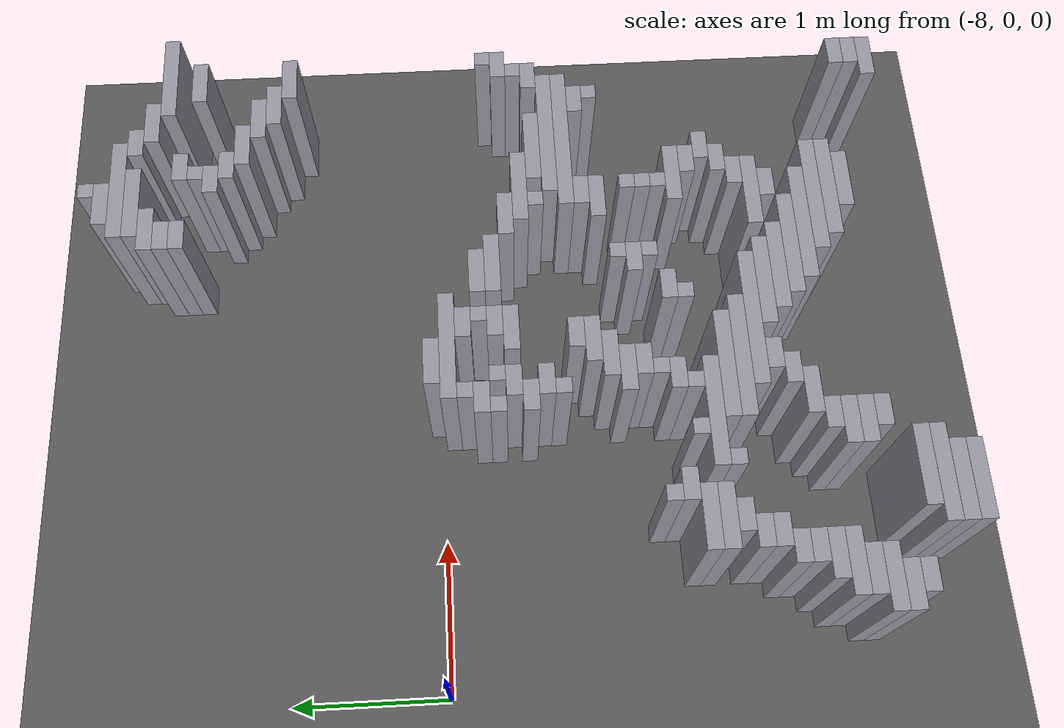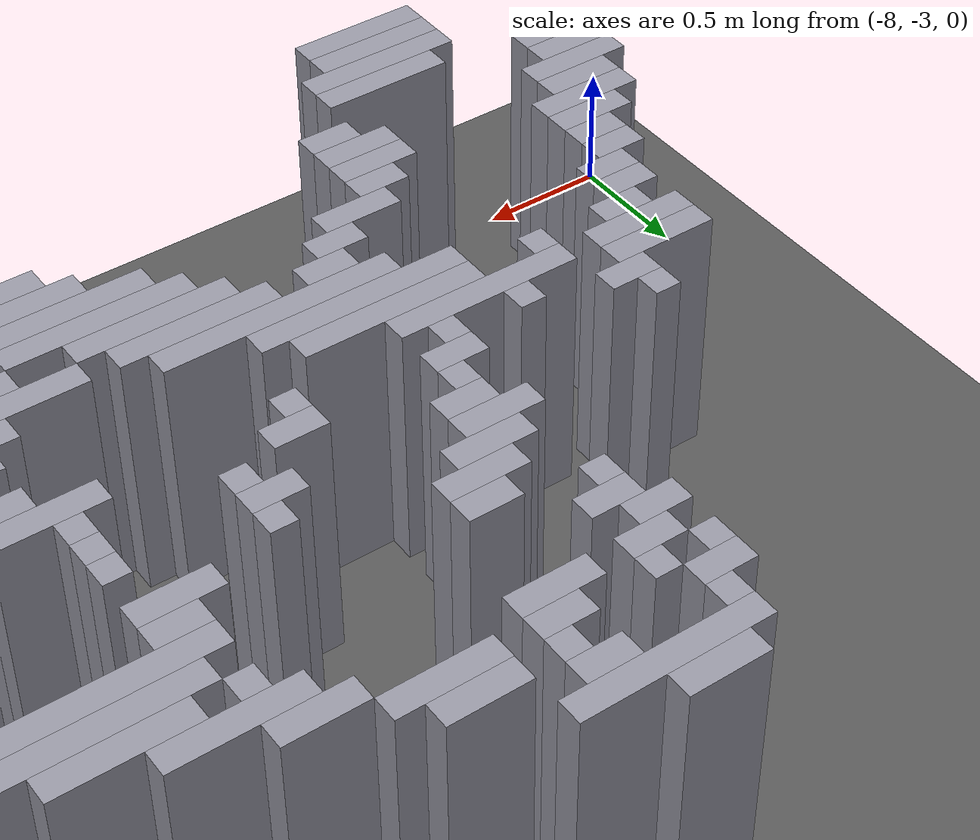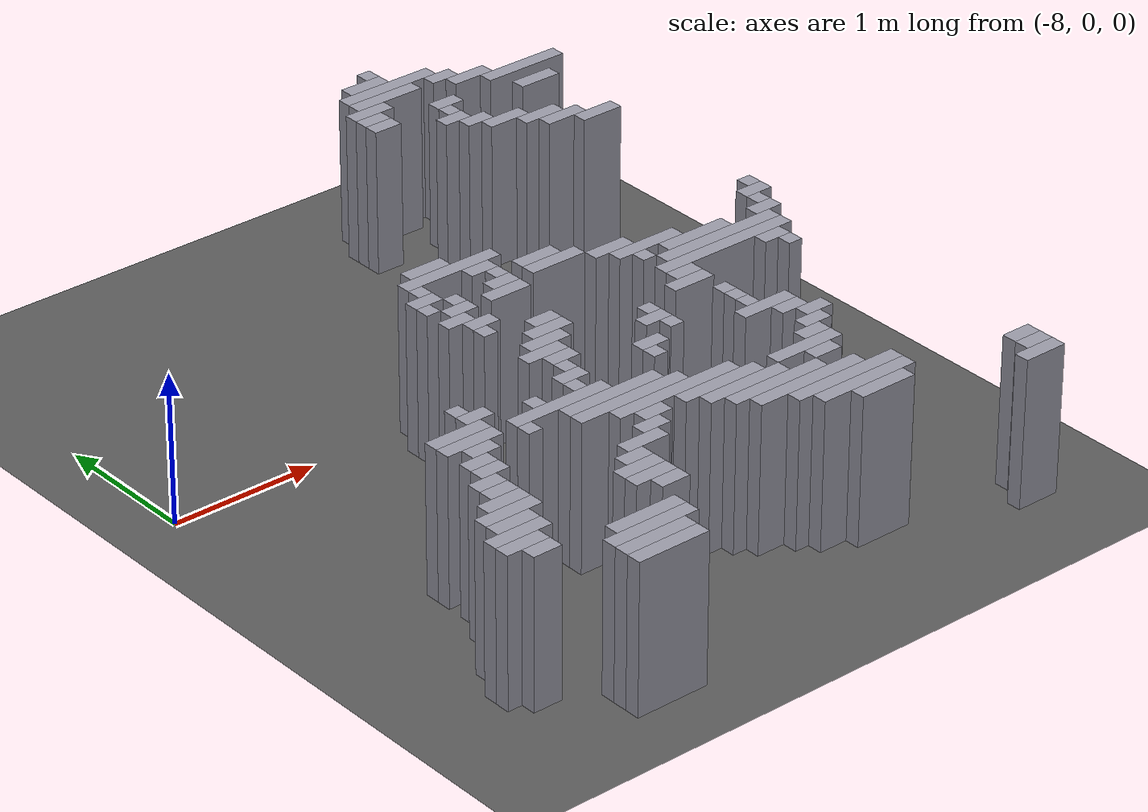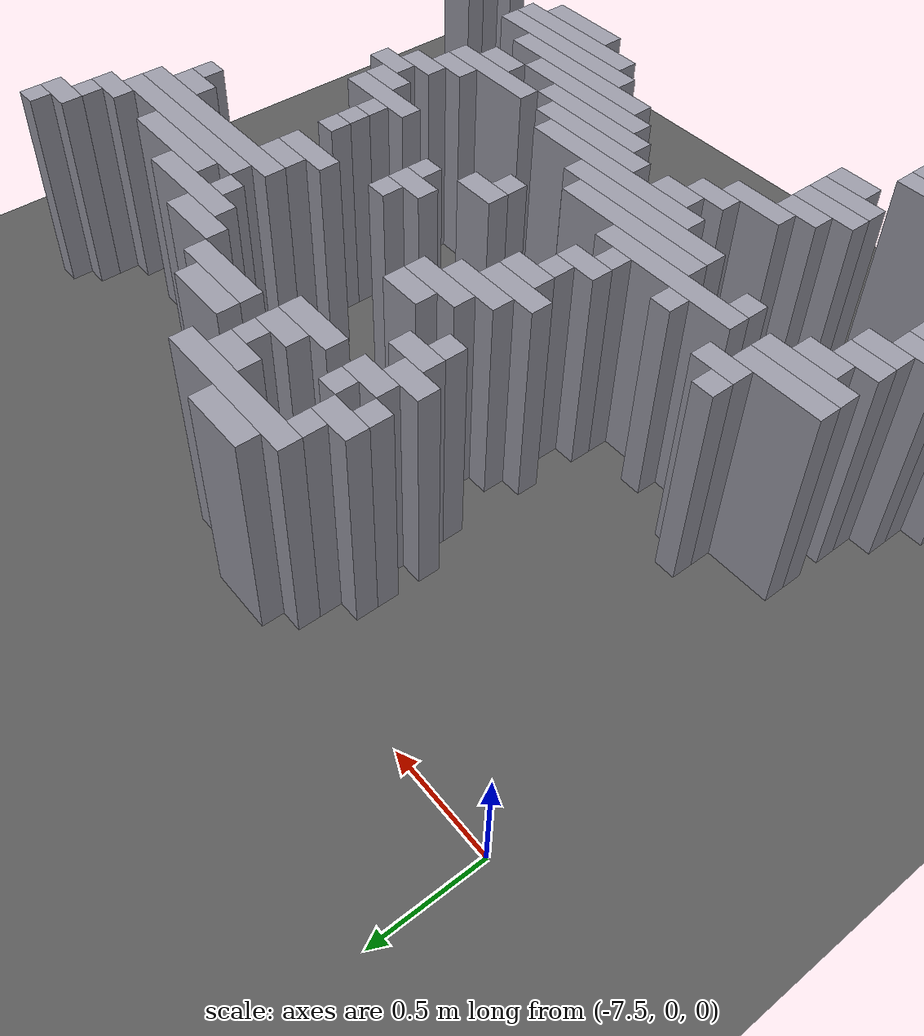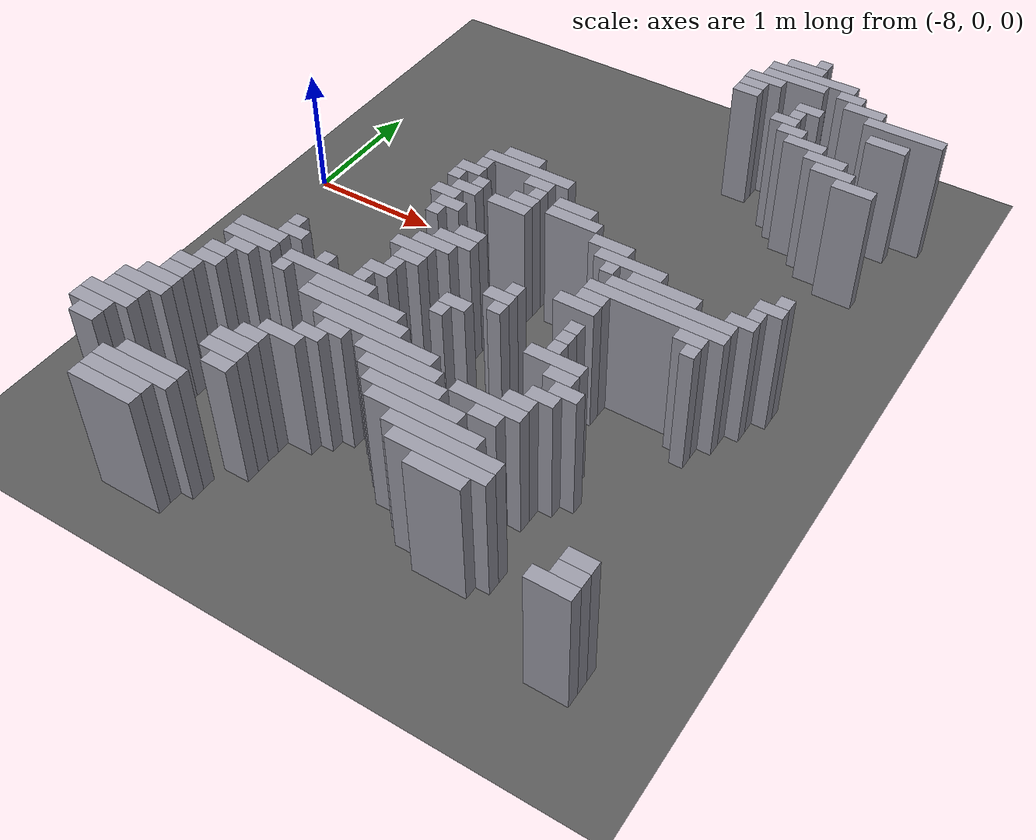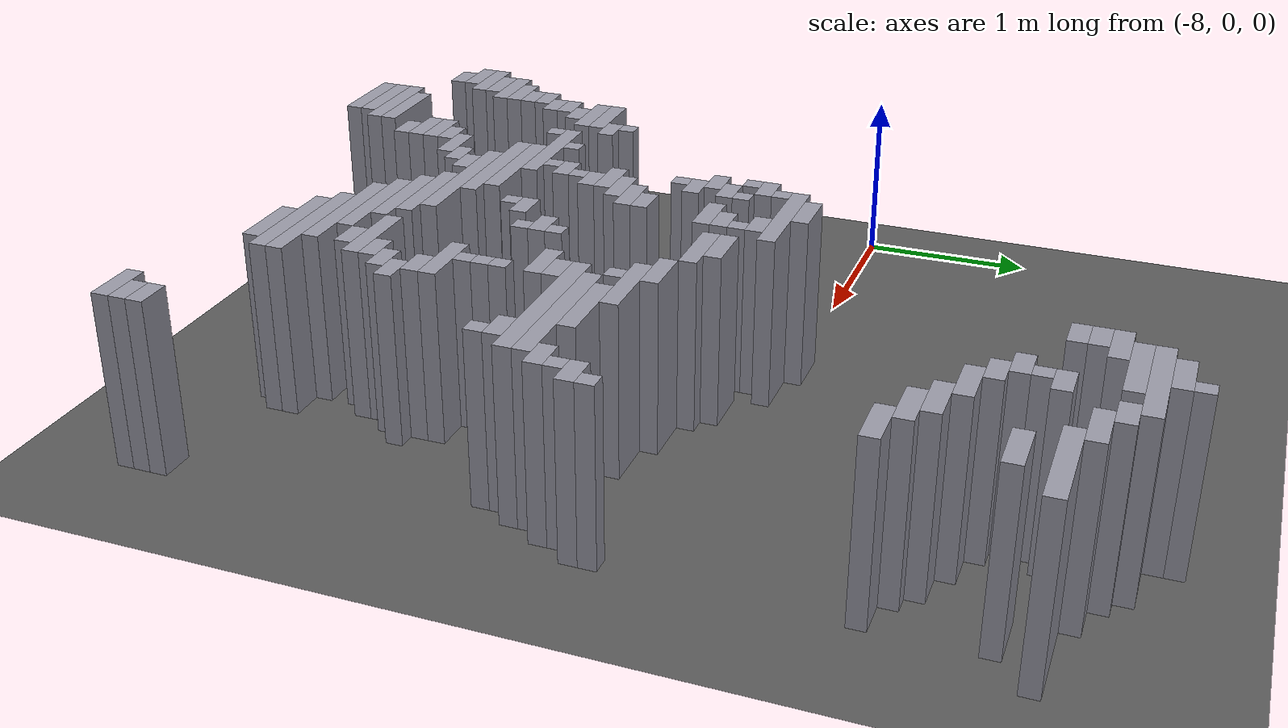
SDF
<sdf version="1.8">
 <world name="dimi">
  <model name="ground">
   <static>true</static>
   <link name="ground_link">
    <collision name="c"><geometry><plane><normal>0 0 1</normal><size>60 60</size></plane></geometry></collision>
    <visual name="v">
     <geometry><plane><normal>0 0 1</normal><size>60 60</size></plane></geometry>
     <material><ambient>0.3 0.3 0.3 1</ambient><diffuse>0.35 0.35 0.35 1</diffuse></material>
    </visual>
   </link>
  </model>
  <model name="walls">
   <static>true</static>
   <link name="wall_1">
    <pose>-4.8110 2.2290 0.5000 0 0 0</pose>
    <collision name="c"><geometry><box><size>0.1000 0.1000 1.0000</size></box></geometry></collision>
    <visual name="v">
     <geometry><box><size>0.1000 0.1000 1.0000</size></box></geometry>
     <material><ambient>0.5 0.5 0.55 1</ambient><diffuse>0.6 0.6 0.65 1</diffuse></material>
    </visual>
   </link>
   <link name="wall_3">
    <pose>-4.9110 2.1290 0.5000 0 0 0</pose>
    <collision name="c"><geometry><box><size>0.3000 0.1000 1.0000</size></box></geometry></collision>
    <visual name="v">
     <geometry><box><size>0.3000 0.1000 1.0000</size></box></geometry>
     <material><ambient>0.5 0.5 0.55 1</ambient><diffuse>0.6 0.6 0.65 1</diffuse></material>
    </visual>
   </link>
   <link name="wall_4">
    <pose>-4.8110 2.0290 0.5000 0 0 0</pose>
    <collision name="c"><geometry><box><size>0.7000 0.1000 1.0000</size></box></geometry></collision>
    <visual name="v">
     <geometry><box><size>0.7000 0.1000 1.0000</size></box></geometry>
     <material><ambient>0.5 0.5 0.55 1</ambient><diffuse>0.6 0.6 0.65 1</diffuse></material>
    </visual>
   </link>
   <link name="wall_5">
    <pose>-4.9110 1.9290 0.5000 0 0 0</pose>
    <collision name="c"><geometry><box><size>0.5000 0.1000 1.0000</size></box></geometry></collision>
    <visual name="v">
     <geometry><box><size>0.5000 0.1000 1.0000</size></box></geometry>
     <material><ambient>0.5 0.5 0.55 1</ambient><diffuse>0.6 0.6 0.65 1</diffuse></material>
    </visual>
   </link>
   <link name="wall_6">
    <pose>-4.4610 1.9290 0.5000 0 0 0</pose>
    <collision name="c"><geometry><box><size>0.2000 0.1000 1.0000</size></box></geometry></collision>
    <visual name="v">
     <geometry><box><size>0.2000 0.1000 1.0000</size></box></geometry>
     <material><ambient>0.5 0.5 0.55 1</ambient><diffuse>0.6 0.6 0.65 1</diffuse></material>
    </visual>
   </link>
   <link name="wall_7">
    <pose>-5.1110 1.8290 0.5000 0 0 0</pose>
    <collision name="c"><geometry><box><size>0.3000 0.1000 1.0000</size></box></geometry></collision>
    <visual name="v">
     <geometry><box><size>0.3000 0.1000 1.0000</size></box></geometry>
     <material><ambient>0.5 0.5 0.55 1</ambient><diffuse>0.6 0.6 0.65 1</diffuse></material>
    </visual>
   </link>
   <link name="wall_8">
    <pose>-4.3110 1.8290 0.5000 0 0 0</pose>
    <collision name="c"><geometry><box><size>0.3000 0.1000 1.0000</size></box></geometry></collision>
    <visual name="v">
     <geometry><box><size>0.3000 0.1000 1.0000</size></box></geometry>
     <material><ambient>0.5 0.5 0.55 1</ambient><diffuse>0.6 0.6 0.65 1</diffuse></material>
    </visual>
   </link>
   <link name="wall_11">
    <pose>-5.1610 1.7290 0.5000 0 0 0</pose>
    <collision name="c"><geometry><box><size>0.2000 0.1000 1.0000</size></box></geometry></collision>
    <visual name="v">
     <geometry><box><size>0.2000 0.1000 1.0000</size></box></geometry>
     <material><ambient>0.5 0.5 0.55 1</ambient><diffuse>0.6 0.6 0.65 1</diffuse></material>
    </visual>
   </link>
   <link name="wall_12">
    <pose>-3.9610 1.7290 0.5000 0 0 0</pose>
    <collision name="c"><geometry><box><size>0.6000 0.1000 1.0000</size></box></geometry></collision>
    <visual name="v">
     <geometry><box><size>0.6000 0.1000 1.0000</size></box></geometry>
     <material><ambient>0.5 0.5 0.55 1</ambient><diffuse>0.6 0.6 0.65 1</diffuse></material>
    </visual>
   </link>
   <link name="wall_14">
    <pose>-5.1610 1.6290 0.5000 0 0 0</pose>
    <collision name="c"><geometry><box><size>0.2000 0.1000 1.0000</size></box></geometry></collision>
    <visual name="v">
     <geometry><box><size>0.2000 0.1000 1.0000</size></box></geometry>
     <material><ambient>0.5 0.5 0.55 1</ambient><diffuse>0.6 0.6 0.65 1</diffuse></material>
    </visual>
   </link>
   <link name="wall_15">
    <pose>-4.6610 1.6290 0.5000 0 0 0</pose>
    <collision name="c"><geometry><box><size>0.2000 0.1000 1.0000</size></box></geometry></collision>
    <visual name="v">
     <geometry><box><size>0.2000 0.1000 1.0000</size></box></geometry>
     <material><ambient>0.5 0.5 0.55 1</ambient><diffuse>0.6 0.6 0.65 1</diffuse></material>
    </visual>
   </link>
   <link name="wall_18">
    <pose>-4.7110 1.5290 0.5000 0 0 0</pose>
    <collision name="c"><geometry><box><size>0.1000 0.1000 1.0000</size></box></geometry></collision>
    <visual name="v">
     <geometry><box><size>0.1000 0.1000 1.0000</size></box></geometry>
     <material><ambient>0.5 0.5 0.55 1</ambient><diffuse>0.6 0.6 0.65 1</diffuse></material>
    </visual>
   </link>
   <link name="wall_19">
    <pose>-4.0110 1.5290 0.5000 0 0 0</pose>
    <collision name="c"><geometry><box><size>0.3000 0.1000 1.0000</size></box></geometry></collision>
    <visual name="v">
     <geometry><box><size>0.3000 0.1000 1.0000</size></box></geometry>
     <material><ambient>0.5 0.5 0.55 1</ambient><diffuse>0.6 0.6 0.65 1</diffuse></material>
    </visual>
   </link>
   <link name="wall_23">
    <pose>-4.7610 1.4290 0.5000 0 0 0</pose>
    <collision name="c"><geometry><box><size>0.2000 0.1000 1.0000</size></box></geometry></collision>
    <visual name="v">
     <geometry><box><size>0.2000 0.1000 1.0000</size></box></geometry>
     <material><ambient>0.5 0.5 0.55 1</ambient><diffuse>0.6 0.6 0.65 1</diffuse></material>
    </visual>
   </link>
   <link name="wall_30">
    <pose>-4.6610 1.3290 0.5000 0 0 0</pose>
    <collision name="c"><geometry><box><size>0.2000 0.1000 1.0000</size></box></geometry></collision>
    <visual name="v">
     <geometry><box><size>0.2000 0.1000 1.0000</size></box></geometry>
     <material><ambient>0.5 0.5 0.55 1</ambient><diffuse>0.6 0.6 0.65 1</diffuse></material>
    </visual>
   </link>
   <link name="wall_35">
    <pose>-4.5110 1.2290 0.5000 0 0 0</pose>
    <collision name="c"><geometry><box><size>0.3000 0.1000 1.0000</size></box></geometry></collision>
    <visual name="v">
     <geometry><box><size>0.3000 0.1000 1.0000</size></box></geometry>
     <material><ambient>0.5 0.5 0.55 1</ambient><diffuse>0.6 0.6 0.65 1</diffuse></material>
    </visual>
   </link>
   <link name="wall_40">
    <pose>-4.3110 1.1290 0.5000 0 0 0</pose>
    <collision name="c"><geometry><box><size>0.3000 0.1000 1.0000</size></box></geometry></collision>
    <visual name="v">
     <geometry><box><size>0.3000 0.1000 1.0000</size></box></geometry>
     <material><ambient>0.5 0.5 0.55 1</ambient><diffuse>0.6 0.6 0.65 1</diffuse></material>
    </visual>
   </link>
   <link name="wall_44">
    <pose>-4.2110 1.0290 0.5000 0 0 0</pose>
    <collision name="c"><geometry><box><size>0.3000 0.1000 1.0000</size></box></geometry></collision>
    <visual name="v">
     <geometry><box><size>0.3000 0.1000 1.0000</size></box></geometry>
     <material><ambient>0.5 0.5 0.55 1</ambient><diffuse>0.6 0.6 0.65 1</diffuse></material>
    </visual>
   </link>
   <link name="wall_49">
    <pose>-4.0110 0.9290 0.5000 0 0 0</pose>
    <collision name="c"><geometry><box><size>0.3000 0.1000 1.0000</size></box></geometry></collision>
    <visual name="v">
     <geometry><box><size>0.3000 0.1000 1.0000</size></box></geometry>
     <material><ambient>0.5 0.5 0.55 1</ambient><diffuse>0.6 0.6 0.65 1</diffuse></material>
    </visual>
   </link>
   <link name="wall_94">
    <pose>-6.1110 0.0290 0.5000 0 0 0</pose>
    <collision name="c"><geometry><box><size>0.3000 0.1000 1.0000</size></box></geometry></collision>
    <visual name="v">
     <geometry><box><size>0.3000 0.1000 1.0000</size></box></geometry>
     <material><ambient>0.5 0.5 0.55 1</ambient><diffuse>0.6 0.6 0.65 1</diffuse></material>
    </visual>
   </link>
   <link name="wall_100">
    <pose>-6.0110 -0.0710 0.5000 0 0 0</pose>
    <collision name="c"><geometry><box><size>0.7000 0.1000 1.0000</size></box></geometry></collision>
    <visual name="v">
     <geometry><box><size>0.7000 0.1000 1.0000</size></box></geometry>
     <material><ambient>0.5 0.5 0.55 1</ambient><diffuse>0.6 0.6 0.65 1</diffuse></material>
    </visual>
   </link>
   <link name="wall_108">
    <pose>-6.3110 -0.1710 0.5000 0 0 0</pose>
    <collision name="c"><geometry><box><size>0.1000 0.1000 1.0000</size></box></geometry></collision>
    <visual name="v">
     <geometry><box><size>0.1000 0.1000 1.0000</size></box></geometry>
     <material><ambient>0.5 0.5 0.55 1</ambient><diffuse>0.6 0.6 0.65 1</diffuse></material>
    </visual>
   </link>
   <link name="wall_109">
    <pose>-5.8610 -0.1710 0.5000 0 0 0</pose>
    <collision name="c"><geometry><box><size>0.2000 0.1000 1.0000</size></box></geometry></collision>
    <visual name="v">
     <geometry><box><size>0.2000 0.1000 1.0000</size></box></geometry>
     <material><ambient>0.5 0.5 0.55 1</ambient><diffuse>0.6 0.6 0.65 1</diffuse></material>
    </visual>
   </link>
   <link name="wall_118">
    <pose>-6.3610 -0.2710 0.5000 0 0 0</pose>
    <collision name="c"><geometry><box><size>0.2000 0.1000 1.0000</size></box></geometry></collision>
    <visual name="v">
     <geometry><box><size>0.2000 0.1000 1.0000</size></box></geometry>
     <material><ambient>0.5 0.5 0.55 1</ambient><diffuse>0.6 0.6 0.65 1</diffuse></material>
    </visual>
   </link>
   <link name="wall_119">
    <pose>-5.8110 -0.2710 0.5000 0 0 0</pose>
    <collision name="c"><geometry><box><size>0.1000 0.1000 1.0000</size></box></geometry></collision>
    <visual name="v">
     <geometry><box><size>0.1000 0.1000 1.0000</size></box></geometry>
     <material><ambient>0.5 0.5 0.55 1</ambient><diffuse>0.6 0.6 0.65 1</diffuse></material>
    </visual>
   </link>
   <link name="wall_120">
    <pose>-5.5110 -0.2710 0.5000 0 0 0</pose>
    <collision name="c"><geometry><box><size>0.3000 0.1000 1.0000</size></box></geometry></collision>
    <visual name="v">
     <geometry><box><size>0.3000 0.1000 1.0000</size></box></geometry>
     <material><ambient>0.5 0.5 0.55 1</ambient><diffuse>0.6 0.6 0.65 1</diffuse></material>
    </visual>
   </link>
   <link name="wall_127">
    <pose>-6.4110 -0.3710 0.5000 0 0 0</pose>
    <collision name="c"><geometry><box><size>0.1000 0.1000 1.0000</size></box></geometry></collision>
    <visual name="v">
     <geometry><box><size>0.1000 0.1000 1.0000</size></box></geometry>
     <material><ambient>0.5 0.5 0.55 1</ambient><diffuse>0.6 0.6 0.65 1</diffuse></material>
    </visual>
   </link>
   <link name="wall_128">
    <pose>-6.2110 -0.3710 0.5000 0 0 0</pose>
    <collision name="c"><geometry><box><size>0.1000 0.1000 1.0000</size></box></geometry></collision>
    <visual name="v">
     <geometry><box><size>0.1000 0.1000 1.0000</size></box></geometry>
     <material><ambient>0.5 0.5 0.55 1</ambient><diffuse>0.6 0.6 0.65 1</diffuse></material>
    </visual>
   </link>
   <link name="wall_129">
    <pose>-5.8610 -0.3710 0.5000 0 0 0</pose>
    <collision name="c"><geometry><box><size>0.2000 0.1000 1.0000</size></box></geometry></collision>
    <visual name="v">
     <geometry><box><size>0.2000 0.1000 1.0000</size></box></geometry>
     <material><ambient>0.5 0.5 0.55 1</ambient><diffuse>0.6 0.6 0.65 1</diffuse></material>
    </visual>
   </link>
   <link name="wall_130">
    <pose>-5.4610 -0.3710 0.5000 0 0 0</pose>
    <collision name="c"><geometry><box><size>0.4000 0.1000 1.0000</size></box></geometry></collision>
    <visual name="v">
     <geometry><box><size>0.4000 0.1000 1.0000</size></box></geometry>
     <material><ambient>0.5 0.5 0.55 1</ambient><diffuse>0.6 0.6 0.65 1</diffuse></material>
    </visual>
   </link>
   <link name="wall_131">
    <pose>-3.9110 -0.3710 0.5000 0 0 0</pose>
    <collision name="c"><geometry><box><size>0.1000 0.1000 1.0000</size></box></geometry></collision>
    <visual name="v">
     <geometry><box><size>0.1000 0.1000 1.0000</size></box></geometry>
     <material><ambient>0.5 0.5 0.55 1</ambient><diffuse>0.6 0.6 0.65 1</diffuse></material>
    </visual>
   </link>
   <link name="wall_140">
    <pose>-6.2610 -0.4710 0.5000 0 0 0</pose>
    <collision name="c"><geometry><box><size>0.2000 0.1000 1.0000</size></box></geometry></collision>
    <visual name="v">
     <geometry><box><size>0.2000 0.1000 1.0000</size></box></geometry>
     <material><ambient>0.5 0.5 0.55 1</ambient><diffuse>0.6 0.6 0.65 1</diffuse></material>
    </visual>
   </link>
   <link name="wall_141">
    <pose>-5.9110 -0.4710 0.5000 0 0 0</pose>
    <collision name="c"><geometry><box><size>0.3000 0.1000 1.0000</size></box></geometry></collision>
    <visual name="v">
     <geometry><box><size>0.3000 0.1000 1.0000</size></box></geometry>
     <material><ambient>0.5 0.5 0.55 1</ambient><diffuse>0.6 0.6 0.65 1</diffuse></material>
    </visual>
   </link>
   <link name="wall_142">
    <pose>-5.1110 -0.4710 0.5000 0 0 0</pose>
    <collision name="c"><geometry><box><size>0.3000 0.1000 1.0000</size></box></geometry></collision>
    <visual name="v">
     <geometry><box><size>0.3000 0.1000 1.0000</size></box></geometry>
     <material><ambient>0.5 0.5 0.55 1</ambient><diffuse>0.6 0.6 0.65 1</diffuse></material>
    </visual>
   </link>
   <link name="wall_143">
    <pose>-3.9610 -0.4710 0.5000 0 0 0</pose>
    <collision name="c"><geometry><box><size>0.2000 0.1000 1.0000</size></box></geometry></collision>
    <visual name="v">
     <geometry><box><size>0.2000 0.1000 1.0000</size></box></geometry>
     <material><ambient>0.5 0.5 0.55 1</ambient><diffuse>0.6 0.6 0.65 1</diffuse></material>
    </visual>
   </link>
   <link name="wall_151">
    <pose>-6.3610 -0.5710 0.5000 0 0 0</pose>
    <collision name="c"><geometry><box><size>0.2000 0.1000 1.0000</size></box></geometry></collision>
    <visual name="v">
     <geometry><box><size>0.2000 0.1000 1.0000</size></box></geometry>
     <material><ambient>0.5 0.5 0.55 1</ambient><diffuse>0.6 0.6 0.65 1</diffuse></material>
    </visual>
   </link>
   <link name="wall_152">
    <pose>-4.9110 -0.5710 0.5000 0 0 0</pose>
    <collision name="c"><geometry><box><size>0.5000 0.1000 1.0000</size></box></geometry></collision>
    <visual name="v">
     <geometry><box><size>0.5000 0.1000 1.0000</size></box></geometry>
     <material><ambient>0.5 0.5 0.55 1</ambient><diffuse>0.6 0.6 0.65 1</diffuse></material>
    </visual>
   </link>
   <link name="wall_153">
    <pose>-4.0110 -0.5710 0.5000 0 0 0</pose>
    <collision name="c"><geometry><box><size>0.1000 0.1000 1.0000</size></box></geometry></collision>
    <visual name="v">
     <geometry><box><size>0.1000 0.1000 1.0000</size></box></geometry>
     <material><ambient>0.5 0.5 0.55 1</ambient><diffuse>0.6 0.6 0.65 1</diffuse></material>
    </visual>
   </link>
   <link name="wall_161">
    <pose>-6.2610 -0.6710 0.5000 0 0 0</pose>
    <collision name="c"><geometry><box><size>0.2000 0.1000 1.0000</size></box></geometry></collision>
    <visual name="v">
     <geometry><box><size>0.2000 0.1000 1.0000</size></box></geometry>
     <material><ambient>0.5 0.5 0.55 1</ambient><diffuse>0.6 0.6 0.65 1</diffuse></material>
    </visual>
   </link>
   <link name="wall_162">
    <pose>-5.0110 -0.6710 0.5000 0 0 0</pose>
    <collision name="c"><geometry><box><size>0.1000 0.1000 1.0000</size></box></geometry></collision>
    <visual name="v">
     <geometry><box><size>0.1000 0.1000 1.0000</size></box></geometry>
     <material><ambient>0.5 0.5 0.55 1</ambient><diffuse>0.6 0.6 0.65 1</diffuse></material>
    </visual>
   </link>
   <link name="wall_163">
    <pose>-4.6110 -0.6710 0.5000 0 0 0</pose>
    <collision name="c"><geometry><box><size>0.5000 0.1000 1.0000</size></box></geometry></collision>
    <visual name="v">
     <geometry><box><size>0.5000 0.1000 1.0000</size></box></geometry>
     <material><ambient>0.5 0.5 0.55 1</ambient><diffuse>0.6 0.6 0.65 1</diffuse></material>
    </visual>
   </link>
   <link name="wall_164">
    <pose>-4.0610 -0.6710 0.5000 0 0 0</pose>
    <collision name="c"><geometry><box><size>0.2000 0.1000 1.0000</size></box></geometry></collision>
    <visual name="v">
     <geometry><box><size>0.2000 0.1000 1.0000</size></box></geometry>
     <material><ambient>0.5 0.5 0.55 1</ambient><diffuse>0.6 0.6 0.65 1</diffuse></material>
    </visual>
   </link>
   <link name="wall_170">
    <pose>-6.3110 -0.7710 0.5000 0 0 0</pose>
    <collision name="c"><geometry><box><size>0.1000 0.1000 1.0000</size></box></geometry></collision>
    <visual name="v">
     <geometry><box><size>0.1000 0.1000 1.0000</size></box></geometry>
     <material><ambient>0.5 0.5 0.55 1</ambient><diffuse>0.6 0.6 0.65 1</diffuse></material>
    </visual>
   </link>
   <link name="wall_171">
    <pose>-4.5110 -0.7710 0.5000 0 0 0</pose>
    <collision name="c"><geometry><box><size>0.9000 0.1000 1.0000</size></box></geometry></collision>
    <visual name="v">
     <geometry><box><size>0.9000 0.1000 1.0000</size></box></geometry>
     <material><ambient>0.5 0.5 0.55 1</ambient><diffuse>0.6 0.6 0.65 1</diffuse></material>
    </visual>
   </link>
   <link name="wall_176">
    <pose>-5.9610 -0.8710 0.5000 0 0 0</pose>
    <collision name="c"><geometry><box><size>0.2000 0.1000 1.0000</size></box></geometry></collision>
    <visual name="v">
     <geometry><box><size>0.2000 0.1000 1.0000</size></box></geometry>
     <material><ambient>0.5 0.5 0.55 1</ambient><diffuse>0.6 0.6 0.65 1</diffuse></material>
    </visual>
   </link>
   <link name="wall_177">
    <pose>-4.5610 -0.8710 0.5000 0 0 0</pose>
    <collision name="c"><geometry><box><size>1.0000 0.1000 1.0000</size></box></geometry></collision>
    <visual name="v">
     <geometry><box><size>1.0000 0.1000 1.0000</size></box></geometry>
     <material><ambient>0.5 0.5 0.55 1</ambient><diffuse>0.6 0.6 0.65 1</diffuse></material>
    </visual>
   </link>
   <link name="wall_181">
    <pose>-6.0110 -0.9710 0.5000 0 0 0</pose>
    <collision name="c"><geometry><box><size>0.3000 0.1000 1.0000</size></box></geometry></collision>
    <visual name="v">
     <geometry><box><size>0.3000 0.1000 1.0000</size></box></geometry>
     <material><ambient>0.5 0.5 0.55 1</ambient><diffuse>0.6 0.6 0.65 1</diffuse></material>
    </visual>
   </link>
   <link name="wall_182">
    <pose>-4.9610 -0.9710 0.5000 0 0 0</pose>
    <collision name="c"><geometry><box><size>0.2000 0.1000 1.0000</size></box></geometry></collision>
    <visual name="v">
     <geometry><box><size>0.2000 0.1000 1.0000</size></box></geometry>
     <material><ambient>0.5 0.5 0.55 1</ambient><diffuse>0.6 0.6 0.65 1</diffuse></material>
    </visual>
   </link>
   <link name="wall_183">
    <pose>-4.2610 -0.9710 0.5000 0 0 0</pose>
    <collision name="c"><geometry><box><size>0.2000 0.1000 1.0000</size></box></geometry></collision>
    <visual name="v">
     <geometry><box><size>0.2000 0.1000 1.0000</size></box></geometry>
     <material><ambient>0.5 0.5 0.55 1</ambient><diffuse>0.6 0.6 0.65 1</diffuse></material>
    </visual>
   </link>
   <link name="wall_187">
    <pose>-6.1110 -1.0710 0.5000 0 0 0</pose>
    <collision name="c"><geometry><box><size>0.3000 0.1000 1.0000</size></box></geometry></collision>
    <visual name="v">
     <geometry><box><size>0.3000 0.1000 1.0000</size></box></geometry>
     <material><ambient>0.5 0.5 0.55 1</ambient><diffuse>0.6 0.6 0.65 1</diffuse></material>
    </visual>
   </link>
   <link name="wall_188">
    <pose>-5.0110 -1.0710 0.5000 0 0 0</pose>
    <collision name="c"><geometry><box><size>0.3000 0.1000 1.0000</size></box></geometry></collision>
    <visual name="v">
     <geometry><box><size>0.3000 0.1000 1.0000</size></box></geometry>
     <material><ambient>0.5 0.5 0.55 1</ambient><diffuse>0.6 0.6 0.65 1</diffuse></material>
    </visual>
   </link>
   <link name="wall_189">
    <pose>-4.2110 -1.0710 0.5000 0 0 0</pose>
    <collision name="c"><geometry><box><size>0.1000 0.1000 1.0000</size></box></geometry></collision>
    <visual name="v">
     <geometry><box><size>0.1000 0.1000 1.0000</size></box></geometry>
     <material><ambient>0.5 0.5 0.55 1</ambient><diffuse>0.6 0.6 0.65 1</diffuse></material>
    </visual>
   </link>
   <link name="wall_194">
    <pose>-6.2110 -1.1710 0.5000 0 0 0</pose>
    <collision name="c"><geometry><box><size>0.3000 0.1000 1.0000</size></box></geometry></collision>
    <visual name="v">
     <geometry><box><size>0.3000 0.1000 1.0000</size></box></geometry>
     <material><ambient>0.5 0.5 0.55 1</ambient><diffuse>0.6 0.6 0.65 1</diffuse></material>
    </visual>
   </link>
   <link name="wall_195">
    <pose>-5.4110 -1.1710 0.5000 0 0 0</pose>
    <collision name="c"><geometry><box><size>0.1000 0.1000 1.0000</size></box></geometry></collision>
    <visual name="v">
     <geometry><box><size>0.1000 0.1000 1.0000</size></box></geometry>
     <material><ambient>0.5 0.5 0.55 1</ambient><diffuse>0.6 0.6 0.65 1</diffuse></material>
    </visual>
   </link>
   <link name="wall_200">
    <pose>-6.1610 -1.2710 0.5000 0 0 0</pose>
    <collision name="c"><geometry><box><size>0.2000 0.1000 1.0000</size></box></geometry></collision>
    <visual name="v">
     <geometry><box><size>0.2000 0.1000 1.0000</size></box></geometry>
     <material><ambient>0.5 0.5 0.55 1</ambient><diffuse>0.6 0.6 0.65 1</diffuse></material>
    </visual>
   </link>
   <link name="wall_201">
    <pose>-5.4610 -1.2710 0.5000 0 0 0</pose>
    <collision name="c"><geometry><box><size>0.2000 0.1000 1.0000</size></box></geometry></collision>
    <visual name="v">
     <geometry><box><size>0.2000 0.1000 1.0000</size></box></geometry>
     <material><ambient>0.5 0.5 0.55 1</ambient><diffuse>0.6 0.6 0.65 1</diffuse></material>
    </visual>
   </link>
   <link name="wall_202">
    <pose>-4.9110 -1.2710 0.5000 0 0 0</pose>
    <collision name="c"><geometry><box><size>0.1000 0.1000 1.0000</size></box></geometry></collision>
    <visual name="v">
     <geometry><box><size>0.1000 0.1000 1.0000</size></box></geometry>
     <material><ambient>0.5 0.5 0.55 1</ambient><diffuse>0.6 0.6 0.65 1</diffuse></material>
    </visual>
   </link>
   <link name="wall_208">
    <pose>-7.0110 -1.3710 0.5000 0 0 0</pose>
    <collision name="c"><geometry><box><size>0.1000 0.1000 1.0000</size></box></geometry></collision>
    <visual name="v">
     <geometry><box><size>0.1000 0.1000 1.0000</size></box></geometry>
     <material><ambient>0.5 0.5 0.55 1</ambient><diffuse>0.6 0.6 0.65 1</diffuse></material>
    </visual>
   </link>
   <link name="wall_209">
    <pose>-6.2110 -1.3710 0.5000 0 0 0</pose>
    <collision name="c"><geometry><box><size>0.1000 0.1000 1.0000</size></box></geometry></collision>
    <visual name="v">
     <geometry><box><size>0.1000 0.1000 1.0000</size></box></geometry>
     <material><ambient>0.5 0.5 0.55 1</ambient><diffuse>0.6 0.6 0.65 1</diffuse></material>
    </visual>
   </link>
   <link name="wall_210">
    <pose>-5.4110 -1.3710 0.5000 0 0 0</pose>
    <collision name="c"><geometry><box><size>0.1000 0.1000 1.0000</size></box></geometry></collision>
    <visual name="v">
     <geometry><box><size>0.1000 0.1000 1.0000</size></box></geometry>
     <material><ambient>0.5 0.5 0.55 1</ambient><diffuse>0.6 0.6 0.65 1</diffuse></material>
    </visual>
   </link>
   <link name="wall_211">
    <pose>-4.9110 -1.3710 0.5000 0 0 0</pose>
    <collision name="c"><geometry><box><size>0.1000 0.1000 1.0000</size></box></geometry></collision>
    <visual name="v">
     <geometry><box><size>0.1000 0.1000 1.0000</size></box></geometry>
     <material><ambient>0.5 0.5 0.55 1</ambient><diffuse>0.6 0.6 0.65 1</diffuse></material>
    </visual>
   </link>
   <link name="wall_217">
    <pose>-6.9610 -1.4710 0.5000 0 0 0</pose>
    <collision name="c"><geometry><box><size>0.2000 0.1000 1.0000</size></box></geometry></collision>
    <visual name="v">
     <geometry><box><size>0.2000 0.1000 1.0000</size></box></geometry>
     <material><ambient>0.5 0.5 0.55 1</ambient><diffuse>0.6 0.6 0.65 1</diffuse></material>
    </visual>
   </link>
   <link name="wall_218">
    <pose>-6.2610 -1.4710 0.5000 0 0 0</pose>
    <collision name="c"><geometry><box><size>0.2000 0.1000 1.0000</size></box></geometry></collision>
    <visual name="v">
     <geometry><box><size>0.2000 0.1000 1.0000</size></box></geometry>
     <material><ambient>0.5 0.5 0.55 1</ambient><diffuse>0.6 0.6 0.65 1</diffuse></material>
    </visual>
   </link>
   <link name="wall_219">
    <pose>-5.6610 -1.4710 0.5000 0 0 0</pose>
    <collision name="c"><geometry><box><size>0.2000 0.1000 1.0000</size></box></geometry></collision>
    <visual name="v">
     <geometry><box><size>0.2000 0.1000 1.0000</size></box></geometry>
     <material><ambient>0.5 0.5 0.55 1</ambient><diffuse>0.6 0.6 0.65 1</diffuse></material>
    </visual>
   </link>
   <link name="wall_220">
    <pose>-4.9110 -1.4710 0.5000 0 0 0</pose>
    <collision name="c"><geometry><box><size>0.1000 0.1000 1.0000</size></box></geometry></collision>
    <visual name="v">
     <geometry><box><size>0.1000 0.1000 1.0000</size></box></geometry>
     <material><ambient>0.5 0.5 0.55 1</ambient><diffuse>0.6 0.6 0.65 1</diffuse></material>
    </visual>
   </link>
   <link name="wall_226">
    <pose>-7.1610 -1.5710 0.5000 0 0 0</pose>
    <collision name="c"><geometry><box><size>0.4000 0.1000 1.0000</size></box></geometry></collision>
    <visual name="v">
     <geometry><box><size>0.4000 0.1000 1.0000</size></box></geometry>
     <material><ambient>0.5 0.5 0.55 1</ambient><diffuse>0.6 0.6 0.65 1</diffuse></material>
    </visual>
   </link>
   <link name="wall_227">
    <pose>-6.6110 -1.5710 0.5000 0 0 0</pose>
    <collision name="c"><geometry><box><size>0.1000 0.1000 1.0000</size></box></geometry></collision>
    <visual name="v">
     <geometry><box><size>0.1000 0.1000 1.0000</size></box></geometry>
     <material><ambient>0.5 0.5 0.55 1</ambient><diffuse>0.6 0.6 0.65 1</diffuse></material>
    </visual>
   </link>
   <link name="wall_228">
    <pose>-6.3110 -1.5710 0.5000 0 0 0</pose>
    <collision name="c"><geometry><box><size>0.1000 0.1000 1.0000</size></box></geometry></collision>
    <visual name="v">
     <geometry><box><size>0.1000 0.1000 1.0000</size></box></geometry>
     <material><ambient>0.5 0.5 0.55 1</ambient><diffuse>0.6 0.6 0.65 1</diffuse></material>
    </visual>
   </link>
   <link name="wall_229">
    <pose>-5.7110 -1.5710 0.5000 0 0 0</pose>
    <collision name="c"><geometry><box><size>0.1000 0.1000 1.0000</size></box></geometry></collision>
    <visual name="v">
     <geometry><box><size>0.1000 0.1000 1.0000</size></box></geometry>
     <material><ambient>0.5 0.5 0.55 1</ambient><diffuse>0.6 0.6 0.65 1</diffuse></material>
    </visual>
   </link>
   <link name="wall_230">
    <pose>-4.8610 -1.5710 0.5000 0 0 0</pose>
    <collision name="c"><geometry><box><size>0.4000 0.1000 1.0000</size></box></geometry></collision>
    <visual name="v">
     <geometry><box><size>0.4000 0.1000 1.0000</size></box></geometry>
     <material><ambient>0.5 0.5 0.55 1</ambient><diffuse>0.6 0.6 0.65 1</diffuse></material>
    </visual>
   </link>
   <link name="wall_235">
    <pose>-7.1610 -1.6710 0.5000 0 0 0</pose>
    <collision name="c"><geometry><box><size>0.4000 0.1000 1.0000</size></box></geometry></collision>
    <visual name="v">
     <geometry><box><size>0.4000 0.1000 1.0000</size></box></geometry>
     <material><ambient>0.5 0.5 0.55 1</ambient><diffuse>0.6 0.6 0.65 1</diffuse></material>
    </visual>
   </link>
   <link name="wall_236">
    <pose>-6.5110 -1.6710 0.5000 0 0 0</pose>
    <collision name="c"><geometry><box><size>0.7000 0.1000 1.0000</size></box></geometry></collision>
    <visual name="v">
     <geometry><box><size>0.7000 0.1000 1.0000</size></box></geometry>
     <material><ambient>0.5 0.5 0.55 1</ambient><diffuse>0.6 0.6 0.65 1</diffuse></material>
    </visual>
   </link>
   <link name="wall_237">
    <pose>-4.7610 -1.6710 0.5000 0 0 0</pose>
    <collision name="c"><geometry><box><size>0.2000 0.1000 1.0000</size></box></geometry></collision>
    <visual name="v">
     <geometry><box><size>0.2000 0.1000 1.0000</size></box></geometry>
     <material><ambient>0.5 0.5 0.55 1</ambient><diffuse>0.6 0.6 0.65 1</diffuse></material>
    </visual>
   </link>
   <link name="wall_242">
    <pose>-7.1610 -1.7710 0.5000 0 0 0</pose>
    <collision name="c"><geometry><box><size>0.2000 0.1000 1.0000</size></box></geometry></collision>
    <visual name="v">
     <geometry><box><size>0.2000 0.1000 1.0000</size></box></geometry>
     <material><ambient>0.5 0.5 0.55 1</ambient><diffuse>0.6 0.6 0.65 1</diffuse></material>
    </visual>
   </link>
   <link name="wall_243">
    <pose>-6.8110 -1.7710 0.5000 0 0 0</pose>
    <collision name="c"><geometry><box><size>0.1000 0.1000 1.0000</size></box></geometry></collision>
    <visual name="v">
     <geometry><box><size>0.1000 0.1000 1.0000</size></box></geometry>
     <material><ambient>0.5 0.5 0.55 1</ambient><diffuse>0.6 0.6 0.65 1</diffuse></material>
    </visual>
   </link>
   <link name="wall_244">
    <pose>-6.2110 -1.7710 0.5000 0 0 0</pose>
    <collision name="c"><geometry><box><size>0.7000 0.1000 1.0000</size></box></geometry></collision>
    <visual name="v">
     <geometry><box><size>0.7000 0.1000 1.0000</size></box></geometry>
     <material><ambient>0.5 0.5 0.55 1</ambient><diffuse>0.6 0.6 0.65 1</diffuse></material>
    </visual>
   </link>
   <link name="wall_245">
    <pose>-4.6610 -1.7710 0.5000 0 0 0</pose>
    <collision name="c"><geometry><box><size>0.2000 0.1000 1.0000</size></box></geometry></collision>
    <visual name="v">
     <geometry><box><size>0.2000 0.1000 1.0000</size></box></geometry>
     <material><ambient>0.5 0.5 0.55 1</ambient><diffuse>0.6 0.6 0.65 1</diffuse></material>
    </visual>
   </link>
   <link name="wall_249">
    <pose>-7.2610 -1.8710 0.5000 0 0 0</pose>
    <collision name="c"><geometry><box><size>0.2000 0.1000 1.0000</size></box></geometry></collision>
    <visual name="v">
     <geometry><box><size>0.2000 0.1000 1.0000</size></box></geometry>
     <material><ambient>0.5 0.5 0.55 1</ambient><diffuse>0.6 0.6 0.65 1</diffuse></material>
    </visual>
   </link>
   <link name="wall_250">
    <pose>-6.1610 -1.8710 0.5000 0 0 0</pose>
    <collision name="c"><geometry><box><size>0.8000 0.1000 1.0000</size></box></geometry></collision>
    <visual name="v">
     <geometry><box><size>0.8000 0.1000 1.0000</size></box></geometry>
     <material><ambient>0.5 0.5 0.55 1</ambient><diffuse>0.6 0.6 0.65 1</diffuse></material>
    </visual>
   </link>
   <link name="wall_251">
    <pose>-4.7610 -1.8710 0.5000 0 0 0</pose>
    <collision name="c"><geometry><box><size>0.2000 0.1000 1.0000</size></box></geometry></collision>
    <visual name="v">
     <geometry><box><size>0.2000 0.1000 1.0000</size></box></geometry>
     <material><ambient>0.5 0.5 0.55 1</ambient><diffuse>0.6 0.6 0.65 1</diffuse></material>
    </visual>
   </link>
   <link name="wall_256">
    <pose>-7.2610 -1.9710 0.5000 0 0 0</pose>
    <collision name="c"><geometry><box><size>0.2000 0.1000 1.0000</size></box></geometry></collision>
    <visual name="v">
     <geometry><box><size>0.2000 0.1000 1.0000</size></box></geometry>
     <material><ambient>0.5 0.5 0.55 1</ambient><diffuse>0.6 0.6 0.65 1</diffuse></material>
    </visual>
   </link>
   <link name="wall_257">
    <pose>-5.9110 -1.9710 0.5000 0 0 0</pose>
    <collision name="c"><geometry><box><size>0.9000 0.1000 1.0000</size></box></geometry></collision>
    <visual name="v">
     <geometry><box><size>0.9000 0.1000 1.0000</size></box></geometry>
     <material><ambient>0.5 0.5 0.55 1</ambient><diffuse>0.6 0.6 0.65 1</diffuse></material>
    </visual>
   </link>
   <link name="wall_258">
    <pose>-4.8610 -1.9710 0.5000 0 0 0</pose>
    <collision name="c"><geometry><box><size>0.2000 0.1000 1.0000</size></box></geometry></collision>
    <visual name="v">
     <geometry><box><size>0.2000 0.1000 1.0000</size></box></geometry>
     <material><ambient>0.5 0.5 0.55 1</ambient><diffuse>0.6 0.6 0.65 1</diffuse></material>
    </visual>
   </link>
   <link name="wall_263">
    <pose>-7.3610 -2.0710 0.5000 0 0 0</pose>
    <collision name="c"><geometry><box><size>0.2000 0.1000 1.0000</size></box></geometry></collision>
    <visual name="v">
     <geometry><box><size>0.2000 0.1000 1.0000</size></box></geometry>
     <material><ambient>0.5 0.5 0.55 1</ambient><diffuse>0.6 0.6 0.65 1</diffuse></material>
    </visual>
   </link>
   <link name="wall_264">
    <pose>-6.1610 -2.0710 0.5000 0 0 0</pose>
    <collision name="c"><geometry><box><size>0.2000 0.1000 1.0000</size></box></geometry></collision>
    <visual name="v">
     <geometry><box><size>0.2000 0.1000 1.0000</size></box></geometry>
     <material><ambient>0.5 0.5 0.55 1</ambient><diffuse>0.6 0.6 0.65 1</diffuse></material>
    </visual>
   </link>
   <link name="wall_265">
    <pose>-5.6610 -2.0710 0.5000 0 0 0</pose>
    <collision name="c"><geometry><box><size>0.6000 0.1000 1.0000</size></box></geometry></collision>
    <visual name="v">
     <geometry><box><size>0.6000 0.1000 1.0000</size></box></geometry>
     <material><ambient>0.5 0.5 0.55 1</ambient><diffuse>0.6 0.6 0.65 1</diffuse></material>
    </visual>
   </link>
   <link name="wall_266">
    <pose>-5.0110 -2.0710 0.5000 0 0 0</pose>
    <collision name="c"><geometry><box><size>0.5000 0.1000 1.0000</size></box></geometry></collision>
    <visual name="v">
     <geometry><box><size>0.5000 0.1000 1.0000</size></box></geometry>
     <material><ambient>0.5 0.5 0.55 1</ambient><diffuse>0.6 0.6 0.65 1</diffuse></material>
    </visual>
   </link>
   <link name="wall_270">
    <pose>-7.3610 -2.1710 0.5000 0 0 0</pose>
    <collision name="c"><geometry><box><size>0.2000 0.1000 1.0000</size></box></geometry></collision>
    <visual name="v">
     <geometry><box><size>0.2000 0.1000 1.0000</size></box></geometry>
     <material><ambient>0.5 0.5 0.55 1</ambient><diffuse>0.6 0.6 0.65 1</diffuse></material>
    </visual>
   </link>
   <link name="wall_271">
    <pose>-6.2610 -2.1710 0.5000 0 0 0</pose>
    <collision name="c"><geometry><box><size>0.2000 0.1000 1.0000</size></box></geometry></collision>
    <visual name="v">
     <geometry><box><size>0.2000 0.1000 1.0000</size></box></geometry>
     <material><ambient>0.5 0.5 0.55 1</ambient><diffuse>0.6 0.6 0.65 1</diffuse></material>
    </visual>
   </link>
   <link name="wall_272">
    <pose>-5.5610 -2.1710 0.5000 0 0 0</pose>
    <collision name="c"><geometry><box><size>0.6000 0.1000 1.0000</size></box></geometry></collision>
    <visual name="v">
     <geometry><box><size>0.6000 0.1000 1.0000</size></box></geometry>
     <material><ambient>0.5 0.5 0.55 1</ambient><diffuse>0.6 0.6 0.65 1</diffuse></material>
    </visual>
   </link>
   <link name="wall_273">
    <pose>-4.9610 -2.1710 0.5000 0 0 0</pose>
    <collision name="c"><geometry><box><size>0.2000 0.1000 1.0000</size></box></geometry></collision>
    <visual name="v">
     <geometry><box><size>0.2000 0.1000 1.0000</size></box></geometry>
     <material><ambient>0.5 0.5 0.55 1</ambient><diffuse>0.6 0.6 0.65 1</diffuse></material>
    </visual>
   </link>
   <link name="wall_280">
    <pose>-7.4110 -2.2710 0.5000 0 0 0</pose>
    <collision name="c"><geometry><box><size>0.3000 0.1000 1.0000</size></box></geometry></collision>
    <visual name="v">
     <geometry><box><size>0.3000 0.1000 1.0000</size></box></geometry>
     <material><ambient>0.5 0.5 0.55 1</ambient><diffuse>0.6 0.6 0.65 1</diffuse></material>
    </visual>
   </link>
   <link name="wall_281">
    <pose>-6.4110 -2.2710 0.5000 0 0 0</pose>
    <collision name="c"><geometry><box><size>0.3000 0.1000 1.0000</size></box></geometry></collision>
    <visual name="v">
     <geometry><box><size>0.3000 0.1000 1.0000</size></box></geometry>
     <material><ambient>0.5 0.5 0.55 1</ambient><diffuse>0.6 0.6 0.65 1</diffuse></material>
    </visual>
   </link>
   <link name="wall_282">
    <pose>-5.4110 -2.2710 0.5000 0 0 0</pose>
    <collision name="c"><geometry><box><size>0.7000 0.1000 1.0000</size></box></geometry></collision>
    <visual name="v">
     <geometry><box><size>0.7000 0.1000 1.0000</size></box></geometry>
     <material><ambient>0.5 0.5 0.55 1</ambient><diffuse>0.6 0.6 0.65 1</diffuse></material>
    </visual>
   </link>
   <link name="wall_289">
    <pose>-7.4610 -2.3710 0.5000 0 0 0</pose>
    <collision name="c"><geometry><box><size>0.4000 0.1000 1.0000</size></box></geometry></collision>
    <visual name="v">
     <geometry><box><size>0.4000 0.1000 1.0000</size></box></geometry>
     <material><ambient>0.5 0.5 0.55 1</ambient><diffuse>0.6 0.6 0.65 1</diffuse></material>
    </visual>
   </link>
   <link name="wall_290">
    <pose>-6.5610 -2.3710 0.5000 0 0 0</pose>
    <collision name="c"><geometry><box><size>0.2000 0.1000 1.0000</size></box></geometry></collision>
    <visual name="v">
     <geometry><box><size>0.2000 0.1000 1.0000</size></box></geometry>
     <material><ambient>0.5 0.5 0.55 1</ambient><diffuse>0.6 0.6 0.65 1</diffuse></material>
    </visual>
   </link>
   <link name="wall_291">
    <pose>-5.2610 -2.3710 0.5000 0 0 0</pose>
    <collision name="c"><geometry><box><size>0.8000 0.1000 1.0000</size></box></geometry></collision>
    <visual name="v">
     <geometry><box><size>0.8000 0.1000 1.0000</size></box></geometry>
     <material><ambient>0.5 0.5 0.55 1</ambient><diffuse>0.6 0.6 0.65 1</diffuse></material>
    </visual>
   </link>
   <link name="wall_299">
    <pose>-7.5110 -2.4710 0.5000 0 0 0</pose>
    <collision name="c"><geometry><box><size>0.3000 0.1000 1.0000</size></box></geometry></collision>
    <visual name="v">
     <geometry><box><size>0.3000 0.1000 1.0000</size></box></geometry>
     <material><ambient>0.5 0.5 0.55 1</ambient><diffuse>0.6 0.6 0.65 1</diffuse></material>
    </visual>
   </link>
   <link name="wall_300">
    <pose>-6.6110 -2.4710 0.5000 0 0 0</pose>
    <collision name="c"><geometry><box><size>0.3000 0.1000 1.0000</size></box></geometry></collision>
    <visual name="v">
     <geometry><box><size>0.3000 0.1000 1.0000</size></box></geometry>
     <material><ambient>0.5 0.5 0.55 1</ambient><diffuse>0.6 0.6 0.65 1</diffuse></material>
    </visual>
   </link>
   <link name="wall_301">
    <pose>-5.0610 -2.4710 0.5000 0 0 0</pose>
    <collision name="c"><geometry><box><size>0.8000 0.1000 1.0000</size></box></geometry></collision>
    <visual name="v">
     <geometry><box><size>0.8000 0.1000 1.0000</size></box></geometry>
     <material><ambient>0.5 0.5 0.55 1</ambient><diffuse>0.6 0.6 0.65 1</diffuse></material>
    </visual>
   </link>
   <link name="wall_308">
    <pose>-7.5610 -2.5710 0.5000 0 0 0</pose>
    <collision name="c"><geometry><box><size>0.4000 0.1000 1.0000</size></box></geometry></collision>
    <visual name="v">
     <geometry><box><size>0.4000 0.1000 1.0000</size></box></geometry>
     <material><ambient>0.5 0.5 0.55 1</ambient><diffuse>0.6 0.6 0.65 1</diffuse></material>
    </visual>
   </link>
   <link name="wall_309">
    <pose>-6.6110 -2.5710 0.5000 0 0 0</pose>
    <collision name="c"><geometry><box><size>0.3000 0.1000 1.0000</size></box></geometry></collision>
    <visual name="v">
     <geometry><box><size>0.3000 0.1000 1.0000</size></box></geometry>
     <material><ambient>0.5 0.5 0.55 1</ambient><diffuse>0.6 0.6 0.65 1</diffuse></material>
    </visual>
   </link>
   <link name="wall_310">
    <pose>-5.0110 -2.5710 0.5000 0 0 0</pose>
    <collision name="c"><geometry><box><size>0.7000 0.1000 1.0000</size></box></geometry></collision>
    <visual name="v">
     <geometry><box><size>0.7000 0.1000 1.0000</size></box></geometry>
     <material><ambient>0.5 0.5 0.55 1</ambient><diffuse>0.6 0.6 0.65 1</diffuse></material>
    </visual>
   </link>
   <link name="wall_315">
    <pose>-7.6110 -2.6710 0.5000 0 0 0</pose>
    <collision name="c"><geometry><box><size>0.3000 0.1000 1.0000</size></box></geometry></collision>
    <visual name="v">
     <geometry><box><size>0.3000 0.1000 1.0000</size></box></geometry>
     <material><ambient>0.5 0.5 0.55 1</ambient><diffuse>0.6 0.6 0.65 1</diffuse></material>
    </visual>
   </link>
   <link name="wall_316">
    <pose>-6.5610 -2.6710 0.5000 0 0 0</pose>
    <collision name="c"><geometry><box><size>0.2000 0.1000 1.0000</size></box></geometry></collision>
    <visual name="v">
     <geometry><box><size>0.2000 0.1000 1.0000</size></box></geometry>
     <material><ambient>0.5 0.5 0.55 1</ambient><diffuse>0.6 0.6 0.65 1</diffuse></material>
    </visual>
   </link>
   <link name="wall_317">
    <pose>-4.9610 -2.6710 0.5000 0 0 0</pose>
    <collision name="c"><geometry><box><size>0.4000 0.1000 1.0000</size></box></geometry></collision>
    <visual name="v">
     <geometry><box><size>0.4000 0.1000 1.0000</size></box></geometry>
     <material><ambient>0.5 0.5 0.55 1</ambient><diffuse>0.6 0.6 0.65 1</diffuse></material>
    </visual>
   </link>
   <link name="wall_322">
    <pose>-7.5610 -2.7710 0.5000 0 0 0</pose>
    <collision name="c"><geometry><box><size>0.2000 0.1000 1.0000</size></box></geometry></collision>
    <visual name="v">
     <geometry><box><size>0.2000 0.1000 1.0000</size></box></geometry>
     <material><ambient>0.5 0.5 0.55 1</ambient><diffuse>0.6 0.6 0.65 1</diffuse></material>
    </visual>
   </link>
   <link name="wall_323">
    <pose>-3.9610 -2.7710 0.5000 0 0 0</pose>
    <collision name="c"><geometry><box><size>0.2000 0.1000 1.0000</size></box></geometry></collision>
    <visual name="v">
     <geometry><box><size>0.2000 0.1000 1.0000</size></box></geometry>
     <material><ambient>0.5 0.5 0.55 1</ambient><diffuse>0.6 0.6 0.65 1</diffuse></material>
    </visual>
   </link>
   <link name="wall_326">
    <pose>-6.9110 -2.8710 0.5000 0 0 0</pose>
    <collision name="c"><geometry><box><size>0.5000 0.1000 1.0000</size></box></geometry></collision>
    <visual name="v">
     <geometry><box><size>0.5000 0.1000 1.0000</size></box></geometry>
     <material><ambient>0.5 0.5 0.55 1</ambient><diffuse>0.6 0.6 0.65 1</diffuse></material>
    </visual>
   </link>
   <link name="wall_327">
    <pose>-3.9610 -2.8710 0.5000 0 0 0</pose>
    <collision name="c"><geometry><box><size>0.2000 0.1000 1.0000</size></box></geometry></collision>
    <visual name="v">
     <geometry><box><size>0.2000 0.1000 1.0000</size></box></geometry>
     <material><ambient>0.5 0.5 0.55 1</ambient><diffuse>0.6 0.6 0.65 1</diffuse></material>
    </visual>
   </link>
   <link name="wall_330">
    <pose>-6.9610 -2.9710 0.5000 0 0 0</pose>
    <collision name="c"><geometry><box><size>0.6000 0.1000 1.0000</size></box></geometry></collision>
    <visual name="v">
     <geometry><box><size>0.6000 0.1000 1.0000</size></box></geometry>
     <material><ambient>0.5 0.5 0.55 1</ambient><diffuse>0.6 0.6 0.65 1</diffuse></material>
    </visual>
   </link>
   <link name="wall_331">
    <pose>-4.0110 -2.9710 0.5000 0 0 0</pose>
    <collision name="c"><geometry><box><size>0.3000 0.1000 1.0000</size></box></geometry></collision>
    <visual name="v">
     <geometry><box><size>0.3000 0.1000 1.0000</size></box></geometry>
     <material><ambient>0.5 0.5 0.55 1</ambient><diffuse>0.6 0.6 0.65 1</diffuse></material>
    </visual>
   </link>
   <link name="wall_334">
    <pose>-7.0110 -3.0710 0.5000 0 0 0</pose>
    <collision name="c"><geometry><box><size>0.5000 0.1000 1.0000</size></box></geometry></collision>
    <visual name="v">
     <geometry><box><size>0.5000 0.1000 1.0000</size></box></geometry>
     <material><ambient>0.5 0.5 0.55 1</ambient><diffuse>0.6 0.6 0.65 1</diffuse></material>
    </visual>
   </link>
   <link name="wall_337">
    <pose>-7.0110 -3.1710 0.5000 0 0 0</pose>
    <collision name="c"><geometry><box><size>0.5000 0.1000 1.0000</size></box></geometry></collision>
    <visual name="v">
     <geometry><box><size>0.5000 0.1000 1.0000</size></box></geometry>
     <material><ambient>0.5 0.5 0.55 1</ambient><diffuse>0.6 0.6 0.65 1</diffuse></material>
    </visual>
   </link>
  </model>
 </world>
</sdf>
